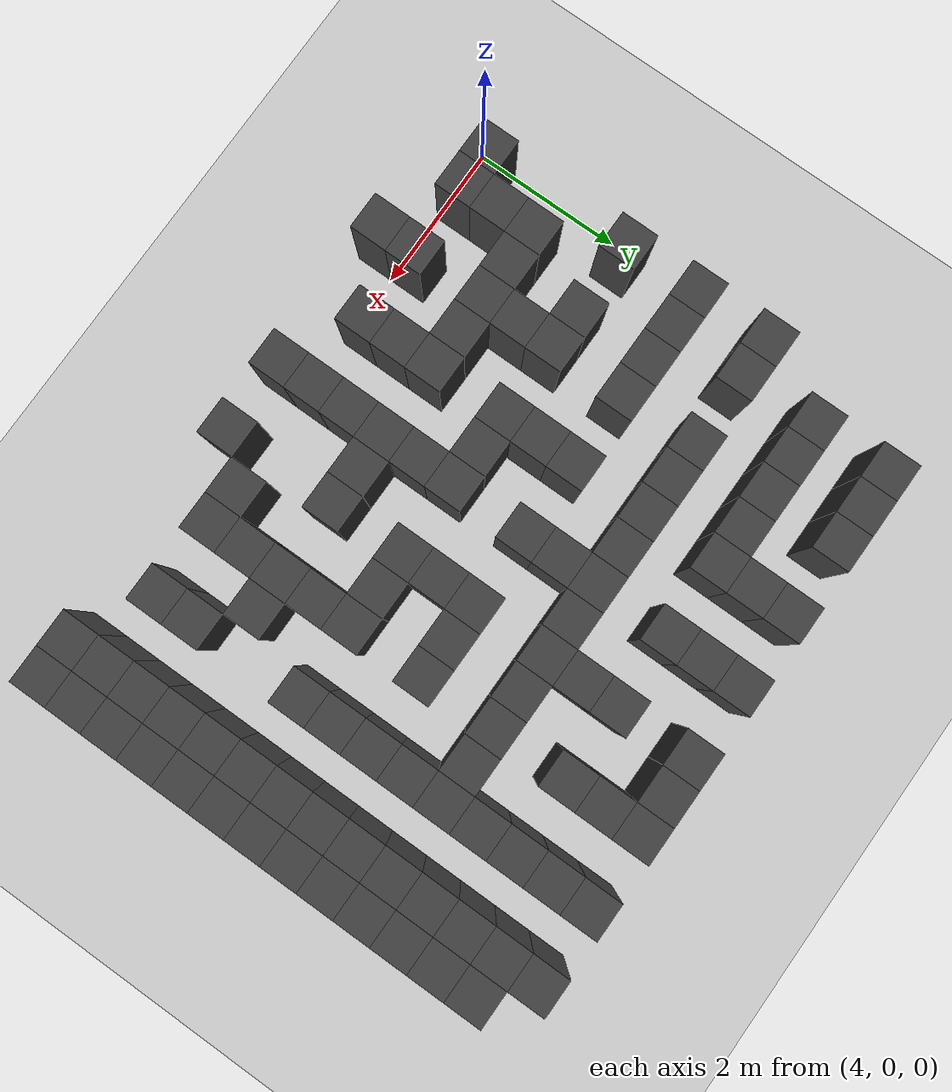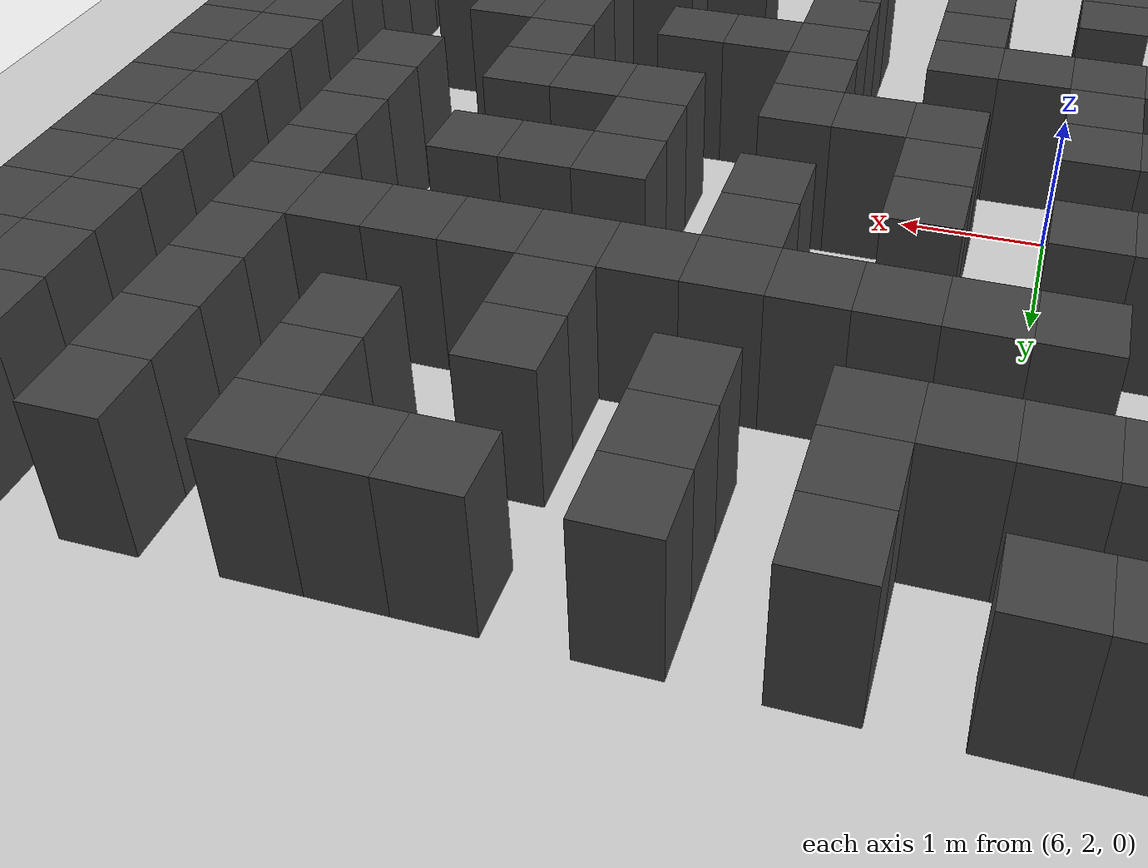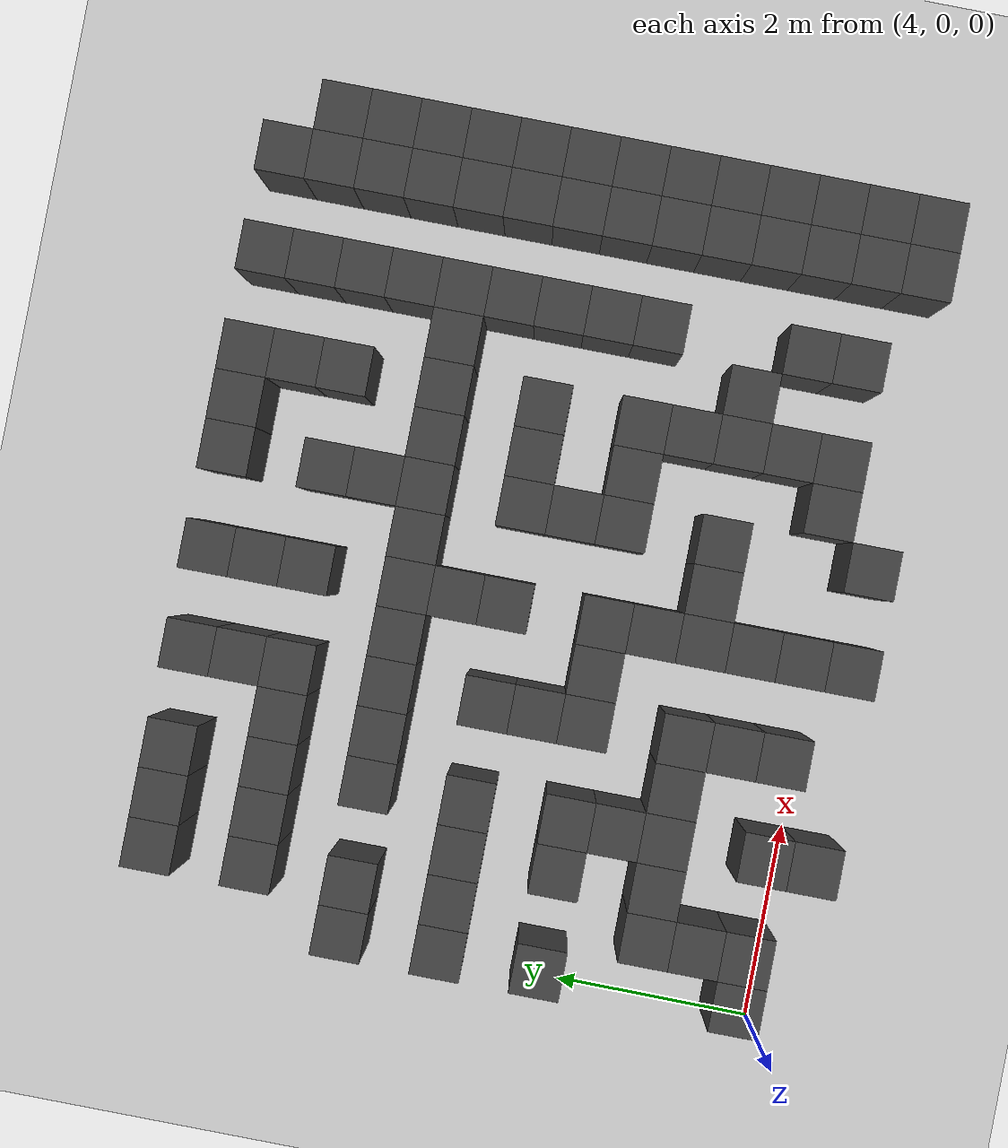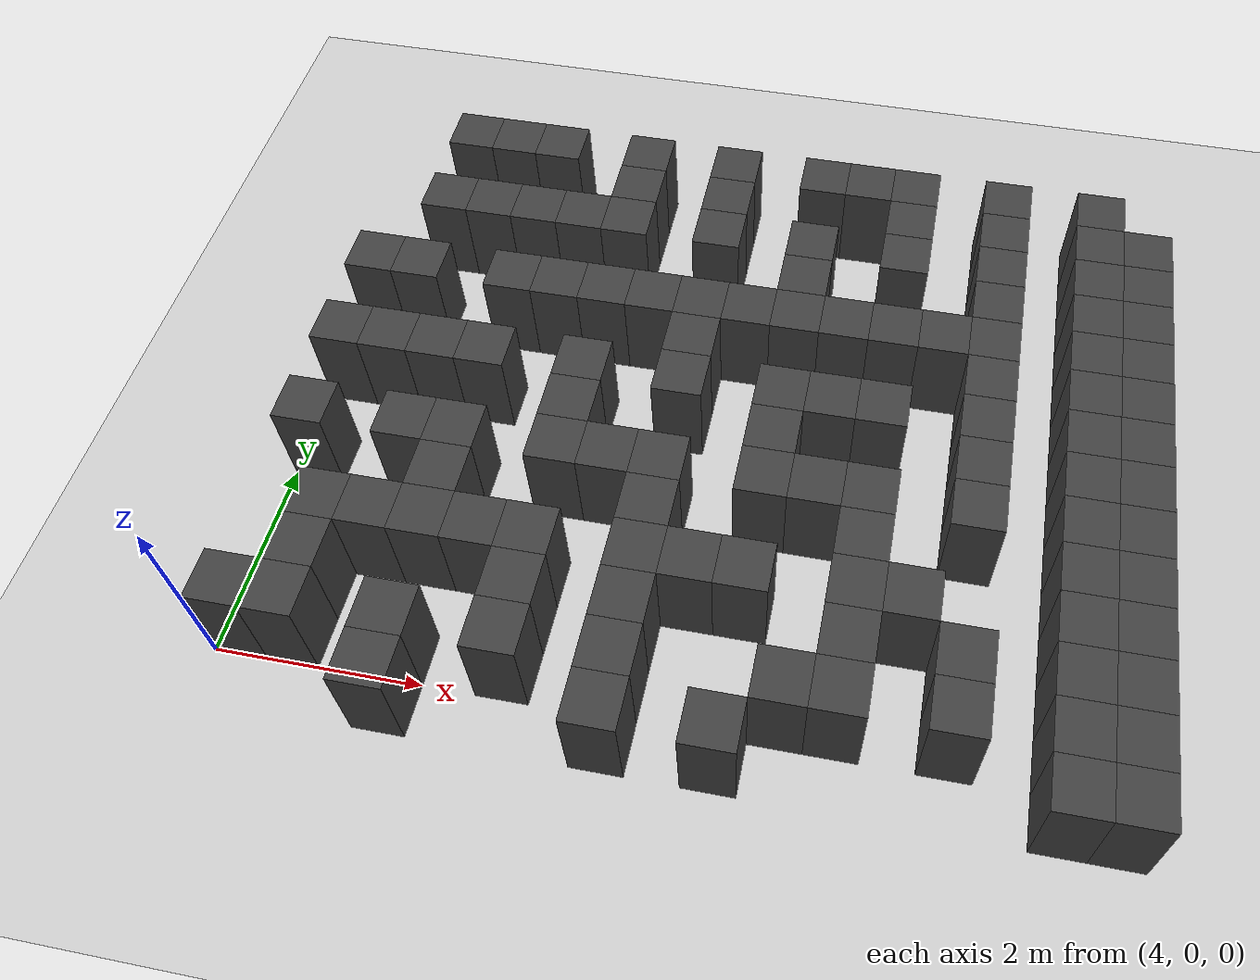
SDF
<sdf version="1.7">
 <world name="map_18313">
  <model name="ground_plane">
   <static>true</static>
   <link name="link">
    <collision name="collision">
     <geometry><plane><normal>0 0 1</normal><size>200 200</size></plane></geometry>
    </collision>
    <visual name="visual">
     <geometry><plane><normal>0 0 1</normal><size>200 200</size></plane></geometry>
     <material><ambient>0.8 0.8 0.8 1</ambient><diffuse>0.8 0.8 0.8 1</diffuse></material>
    </visual>
   </link>
  </model>
  <model name="maze_environment">
   <static>true</static>
   <link name="wall_335">
    <pose>4.750 6.250 0.500 0 0 0</pose>
    <collision name="col"><geometry><box><size>0.5 0.5 1.0</size></box></geometry></collision>
    <visual name="vis">
     <geometry><box><size>0.5 0.5 1.0</size></box></geometry>
     <material><ambient>0.15 0.15 0.15 1</ambient><diffuse>0.25 0.25 0.25 1</diffuse></material>
    </visual>
   </link>
   <link name="wall_336">
    <pose>5.250 6.250 0.500 0 0 0</pose>
    <collision name="col"><geometry><box><size>0.5 0.5 1.0</size></box></geometry></collision>
    <visual name="vis">
     <geometry><box><size>0.5 0.5 1.0</size></box></geometry>
     <material><ambient>0.15 0.15 0.15 1</ambient><diffuse>0.25 0.25 0.25 1</diffuse></material>
    </visual>
   </link>
   <link name="wall_337">
    <pose>5.750 6.250 0.500 0 0 0</pose>
    <collision name="col"><geometry><box><size>0.5 0.5 1.0</size></box></geometry></collision>
    <visual name="vis">
     <geometry><box><size>0.5 0.5 1.0</size></box></geometry>
     <material><ambient>0.15 0.15 0.15 1</ambient><diffuse>0.25 0.25 0.25 1</diffuse></material>
    </visual>
   </link>
   <link name="wall_338">
    <pose>6.750 6.250 0.500 0 0 0</pose>
    <collision name="col"><geometry><box><size>0.5 0.5 1.0</size></box></geometry></collision>
    <visual name="vis">
     <geometry><box><size>0.5 0.5 1.0</size></box></geometry>
     <material><ambient>0.15 0.15 0.15 1</ambient><diffuse>0.25 0.25 0.25 1</diffuse></material>
    </visual>
   </link>
   <link name="wall_339">
    <pose>7.750 6.250 0.500 0 0 0</pose>
    <collision name="col"><geometry><box><size>0.5 0.5 1.0</size></box></geometry></collision>
    <visual name="vis">
     <geometry><box><size>0.5 0.5 1.0</size></box></geometry>
     <material><ambient>0.15 0.15 0.15 1</ambient><diffuse>0.25 0.25 0.25 1</diffuse></material>
    </visual>
   </link>
   <link name="wall_340">
    <pose>8.750 6.250 0.500 0 0 0</pose>
    <collision name="col"><geometry><box><size>0.5 0.5 1.0</size></box></geometry></collision>
    <visual name="vis">
     <geometry><box><size>0.5 0.5 1.0</size></box></geometry>
     <material><ambient>0.15 0.15 0.15 1</ambient><diffuse>0.25 0.25 0.25 1</diffuse></material>
    </visual>
   </link>
   <link name="wall_341">
    <pose>9.250 6.250 0.500 0 0 0</pose>
    <collision name="col"><geometry><box><size>0.5 0.5 1.0</size></box></geometry></collision>
    <visual name="vis">
     <geometry><box><size>0.5 0.5 1.0</size></box></geometry>
     <material><ambient>0.15 0.15 0.15 1</ambient><diffuse>0.25 0.25 0.25 1</diffuse></material>
    </visual>
   </link>
   <link name="wall_342">
    <pose>9.750 6.250 0.500 0 0 0</pose>
    <collision name="col"><geometry><box><size>0.5 0.5 1.0</size></box></geometry></collision>
    <visual name="vis">
     <geometry><box><size>0.5 0.5 1.0</size></box></geometry>
     <material><ambient>0.15 0.15 0.15 1</ambient><diffuse>0.25 0.25 0.25 1</diffuse></material>
    </visual>
   </link>
   <link name="wall_343">
    <pose>10.750 6.250 0.500 0 0 0</pose>
    <collision name="col"><geometry><box><size>0.5 0.5 1.0</size></box></geometry></collision>
    <visual name="vis">
     <geometry><box><size>0.5 0.5 1.0</size></box></geometry>
     <material><ambient>0.15 0.15 0.15 1</ambient><diffuse>0.25 0.25 0.25 1</diffuse></material>
    </visual>
   </link>
   <link name="wall_344">
    <pose>11.750 6.250 0.500 0 0 0</pose>
    <collision name="col"><geometry><box><size>0.5 0.5 1.0</size></box></geometry></collision>
    <visual name="vis">
     <geometry><box><size>0.5 0.5 1.0</size></box></geometry>
     <material><ambient>0.15 0.15 0.15 1</ambient><diffuse>0.25 0.25 0.25 1</diffuse></material>
    </visual>
   </link>
   <link name="wall_353">
    <pose>6.750 5.750 0.500 0 0 0</pose>
    <collision name="col"><geometry><box><size>0.5 0.5 1.0</size></box></geometry></collision>
    <visual name="vis">
     <geometry><box><size>0.5 0.5 1.0</size></box></geometry>
     <material><ambient>0.15 0.15 0.15 1</ambient><diffuse>0.25 0.25 0.25 1</diffuse></material>
    </visual>
   </link>
   <link name="wall_354">
    <pose>7.750 5.750 0.500 0 0 0</pose>
    <collision name="col"><geometry><box><size>0.5 0.5 1.0</size></box></geometry></collision>
    <visual name="vis">
     <geometry><box><size>0.5 0.5 1.0</size></box></geometry>
     <material><ambient>0.15 0.15 0.15 1</ambient><diffuse>0.25 0.25 0.25 1</diffuse></material>
    </visual>
   </link>
   <link name="wall_355">
    <pose>9.750 5.750 0.500 0 0 0</pose>
    <collision name="col"><geometry><box><size>0.5 0.5 1.0</size></box></geometry></collision>
    <visual name="vis">
     <geometry><box><size>0.5 0.5 1.0</size></box></geometry>
     <material><ambient>0.15 0.15 0.15 1</ambient><diffuse>0.25 0.25 0.25 1</diffuse></material>
    </visual>
   </link>
   <link name="wall_356">
    <pose>10.750 5.750 0.500 0 0 0</pose>
    <collision name="col"><geometry><box><size>0.5 0.5 1.0</size></box></geometry></collision>
    <visual name="vis">
     <geometry><box><size>0.5 0.5 1.0</size></box></geometry>
     <material><ambient>0.15 0.15 0.15 1</ambient><diffuse>0.25 0.25 0.25 1</diffuse></material>
    </visual>
   </link>
   <link name="wall_357">
    <pose>11.750 5.750 0.500 0 0 0</pose>
    <collision name="col"><geometry><box><size>0.5 0.5 1.0</size></box></geometry></collision>
    <visual name="vis">
     <geometry><box><size>0.5 0.5 1.0</size></box></geometry>
     <material><ambient>0.15 0.15 0.15 1</ambient><diffuse>0.25 0.25 0.25 1</diffuse></material>
    </visual>
   </link>
   <link name="wall_358">
    <pose>12.250 5.750 0.500 0 0 0</pose>
    <collision name="col"><geometry><box><size>0.5 0.5 1.0</size></box></geometry></collision>
    <visual name="vis">
     <geometry><box><size>0.5 0.5 1.0</size></box></geometry>
     <material><ambient>0.15 0.15 0.15 1</ambient><diffuse>0.25 0.25 0.25 1</diffuse></material>
    </visual>
   </link>
   <link name="wall_385">
    <pose>4.750 5.250 0.500 0 0 0</pose>
    <collision name="col"><geometry><box><size>0.5 0.5 1.0</size></box></geometry></collision>
    <visual name="vis">
     <geometry><box><size>0.5 0.5 1.0</size></box></geometry>
     <material><ambient>0.15 0.15 0.15 1</ambient><diffuse>0.25 0.25 0.25 1</diffuse></material>
    </visual>
   </link>
   <link name="wall_386">
    <pose>5.250 5.250 0.500 0 0 0</pose>
    <collision name="col"><geometry><box><size>0.5 0.5 1.0</size></box></geometry></collision>
    <visual name="vis">
     <geometry><box><size>0.5 0.5 1.0</size></box></geometry>
     <material><ambient>0.15 0.15 0.15 1</ambient><diffuse>0.25 0.25 0.25 1</diffuse></material>
    </visual>
   </link>
   <link name="wall_387">
    <pose>5.750 5.250 0.500 0 0 0</pose>
    <collision name="col"><geometry><box><size>0.5 0.5 1.0</size></box></geometry></collision>
    <visual name="vis">
     <geometry><box><size>0.5 0.5 1.0</size></box></geometry>
     <material><ambient>0.15 0.15 0.15 1</ambient><diffuse>0.25 0.25 0.25 1</diffuse></material>
    </visual>
   </link>
   <link name="wall_388">
    <pose>6.250 5.250 0.500 0 0 0</pose>
    <collision name="col"><geometry><box><size>0.5 0.5 1.0</size></box></geometry></collision>
    <visual name="vis">
     <geometry><box><size>0.5 0.5 1.0</size></box></geometry>
     <material><ambient>0.15 0.15 0.15 1</ambient><diffuse>0.25 0.25 0.25 1</diffuse></material>
    </visual>
   </link>
   <link name="wall_389">
    <pose>6.750 5.250 0.500 0 0 0</pose>
    <collision name="col"><geometry><box><size>0.5 0.5 1.0</size></box></geometry></collision>
    <visual name="vis">
     <geometry><box><size>0.5 0.5 1.0</size></box></geometry>
     <material><ambient>0.15 0.15 0.15 1</ambient><diffuse>0.25 0.25 0.25 1</diffuse></material>
    </visual>
   </link>
   <link name="wall_390">
    <pose>7.750 5.250 0.500 0 0 0</pose>
    <collision name="col"><geometry><box><size>0.5 0.5 1.0</size></box></geometry></collision>
    <visual name="vis">
     <geometry><box><size>0.5 0.5 1.0</size></box></geometry>
     <material><ambient>0.15 0.15 0.15 1</ambient><diffuse>0.25 0.25 0.25 1</diffuse></material>
    </visual>
   </link>
   <link name="wall_391">
    <pose>8.750 5.250 0.500 0 0 0</pose>
    <collision name="col"><geometry><box><size>0.5 0.5 1.0</size></box></geometry></collision>
    <visual name="vis">
     <geometry><box><size>0.5 0.5 1.0</size></box></geometry>
     <material><ambient>0.15 0.15 0.15 1</ambient><diffuse>0.25 0.25 0.25 1</diffuse></material>
    </visual>
   </link>
   <link name="wall_392">
    <pose>9.750 5.250 0.500 0 0 0</pose>
    <collision name="col"><geometry><box><size>0.5 0.5 1.0</size></box></geometry></collision>
    <visual name="vis">
     <geometry><box><size>0.5 0.5 1.0</size></box></geometry>
     <material><ambient>0.15 0.15 0.15 1</ambient><diffuse>0.25 0.25 0.25 1</diffuse></material>
    </visual>
   </link>
   <link name="wall_393">
    <pose>10.750 5.250 0.500 0 0 0</pose>
    <collision name="col"><geometry><box><size>0.5 0.5 1.0</size></box></geometry></collision>
    <visual name="vis">
     <geometry><box><size>0.5 0.5 1.0</size></box></geometry>
     <material><ambient>0.15 0.15 0.15 1</ambient><diffuse>0.25 0.25 0.25 1</diffuse></material>
    </visual>
   </link>
   <link name="wall_394">
    <pose>11.750 5.250 0.500 0 0 0</pose>
    <collision name="col"><geometry><box><size>0.5 0.5 1.0</size></box></geometry></collision>
    <visual name="vis">
     <geometry><box><size>0.5 0.5 1.0</size></box></geometry>
     <material><ambient>0.15 0.15 0.15 1</ambient><diffuse>0.25 0.25 0.25 1</diffuse></material>
    </visual>
   </link>
   <link name="wall_395">
    <pose>12.250 5.250 0.500 0 0 0</pose>
    <collision name="col"><geometry><box><size>0.5 0.5 1.0</size></box></geometry></collision>
    <visual name="vis">
     <geometry><box><size>0.5 0.5 1.0</size></box></geometry>
     <material><ambient>0.15 0.15 0.15 1</ambient><diffuse>0.25 0.25 0.25 1</diffuse></material>
    </visual>
   </link>
   <link name="wall_405">
    <pose>8.750 4.750 0.500 0 0 0</pose>
    <collision name="col"><geometry><box><size>0.5 0.5 1.0</size></box></geometry></collision>
    <visual name="vis">
     <geometry><box><size>0.5 0.5 1.0</size></box></geometry>
     <material><ambient>0.15 0.15 0.15 1</ambient><diffuse>0.25 0.25 0.25 1</diffuse></material>
    </visual>
   </link>
   <link name="wall_406">
    <pose>10.750 4.750 0.500 0 0 0</pose>
    <collision name="col"><geometry><box><size>0.5 0.5 1.0</size></box></geometry></collision>
    <visual name="vis">
     <geometry><box><size>0.5 0.5 1.0</size></box></geometry>
     <material><ambient>0.15 0.15 0.15 1</ambient><diffuse>0.25 0.25 0.25 1</diffuse></material>
    </visual>
   </link>
   <link name="wall_407">
    <pose>11.750 4.750 0.500 0 0 0</pose>
    <collision name="col"><geometry><box><size>0.5 0.5 1.0</size></box></geometry></collision>
    <visual name="vis">
     <geometry><box><size>0.5 0.5 1.0</size></box></geometry>
     <material><ambient>0.15 0.15 0.15 1</ambient><diffuse>0.25 0.25 0.25 1</diffuse></material>
    </visual>
   </link>
   <link name="wall_408">
    <pose>12.250 4.750 0.500 0 0 0</pose>
    <collision name="col"><geometry><box><size>0.5 0.5 1.0</size></box></geometry></collision>
    <visual name="vis">
     <geometry><box><size>0.5 0.5 1.0</size></box></geometry>
     <material><ambient>0.15 0.15 0.15 1</ambient><diffuse>0.25 0.25 0.25 1</diffuse></material>
    </visual>
   </link>
   <link name="wall_431">
    <pose>4.250 4.250 0.500 0 0 0</pose>
    <collision name="col"><geometry><box><size>0.5 0.5 1.0</size></box></geometry></collision>
    <visual name="vis">
     <geometry><box><size>0.5 0.5 1.0</size></box></geometry>
     <material><ambient>0.15 0.15 0.15 1</ambient><diffuse>0.25 0.25 0.25 1</diffuse></material>
    </visual>
   </link>
   <link name="wall_432">
    <pose>4.750 4.250 0.500 0 0 0</pose>
    <collision name="col"><geometry><box><size>0.5 0.5 1.0</size></box></geometry></collision>
    <visual name="vis">
     <geometry><box><size>0.5 0.5 1.0</size></box></geometry>
     <material><ambient>0.15 0.15 0.15 1</ambient><diffuse>0.25 0.25 0.25 1</diffuse></material>
    </visual>
   </link>
   <link name="wall_433">
    <pose>5.750 4.250 0.500 0 0 0</pose>
    <collision name="col"><geometry><box><size>0.5 0.5 1.0</size></box></geometry></collision>
    <visual name="vis">
     <geometry><box><size>0.5 0.5 1.0</size></box></geometry>
     <material><ambient>0.15 0.15 0.15 1</ambient><diffuse>0.25 0.25 0.25 1</diffuse></material>
    </visual>
   </link>
   <link name="wall_434">
    <pose>6.250 4.250 0.500 0 0 0</pose>
    <collision name="col"><geometry><box><size>0.5 0.5 1.0</size></box></geometry></collision>
    <visual name="vis">
     <geometry><box><size>0.5 0.5 1.0</size></box></geometry>
     <material><ambient>0.15 0.15 0.15 1</ambient><diffuse>0.25 0.25 0.25 1</diffuse></material>
    </visual>
   </link>
   <link name="wall_435">
    <pose>6.750 4.250 0.500 0 0 0</pose>
    <collision name="col"><geometry><box><size>0.5 0.5 1.0</size></box></geometry></collision>
    <visual name="vis">
     <geometry><box><size>0.5 0.5 1.0</size></box></geometry>
     <material><ambient>0.15 0.15 0.15 1</ambient><diffuse>0.25 0.25 0.25 1</diffuse></material>
    </visual>
   </link>
   <link name="wall_436">
    <pose>7.250 4.250 0.500 0 0 0</pose>
    <collision name="col"><geometry><box><size>0.5 0.5 1.0</size></box></geometry></collision>
    <visual name="vis">
     <geometry><box><size>0.5 0.5 1.0</size></box></geometry>
     <material><ambient>0.15 0.15 0.15 1</ambient><diffuse>0.25 0.25 0.25 1</diffuse></material>
    </visual>
   </link>
   <link name="wall_437">
    <pose>7.750 4.250 0.500 0 0 0</pose>
    <collision name="col"><geometry><box><size>0.5 0.5 1.0</size></box></geometry></collision>
    <visual name="vis">
     <geometry><box><size>0.5 0.5 1.0</size></box></geometry>
     <material><ambient>0.15 0.15 0.15 1</ambient><diffuse>0.25 0.25 0.25 1</diffuse></material>
    </visual>
   </link>
   <link name="wall_438">
    <pose>8.250 4.250 0.500 0 0 0</pose>
    <collision name="col"><geometry><box><size>0.5 0.5 1.0</size></box></geometry></collision>
    <visual name="vis">
     <geometry><box><size>0.5 0.5 1.0</size></box></geometry>
     <material><ambient>0.15 0.15 0.15 1</ambient><diffuse>0.25 0.25 0.25 1</diffuse></material>
    </visual>
   </link>
   <link name="wall_439">
    <pose>8.750 4.250 0.500 0 0 0</pose>
    <collision name="col"><geometry><box><size>0.5 0.5 1.0</size></box></geometry></collision>
    <visual name="vis">
     <geometry><box><size>0.5 0.5 1.0</size></box></geometry>
     <material><ambient>0.15 0.15 0.15 1</ambient><diffuse>0.25 0.25 0.25 1</diffuse></material>
    </visual>
   </link>
   <link name="wall_440">
    <pose>9.250 4.250 0.500 0 0 0</pose>
    <collision name="col"><geometry><box><size>0.5 0.5 1.0</size></box></geometry></collision>
    <visual name="vis">
     <geometry><box><size>0.5 0.5 1.0</size></box></geometry>
     <material><ambient>0.15 0.15 0.15 1</ambient><diffuse>0.25 0.25 0.25 1</diffuse></material>
    </visual>
   </link>
   <link name="wall_441">
    <pose>9.750 4.250 0.500 0 0 0</pose>
    <collision name="col"><geometry><box><size>0.5 0.5 1.0</size></box></geometry></collision>
    <visual name="vis">
     <geometry><box><size>0.5 0.5 1.0</size></box></geometry>
     <material><ambient>0.15 0.15 0.15 1</ambient><diffuse>0.25 0.25 0.25 1</diffuse></material>
    </visual>
   </link>
   <link name="wall_442">
    <pose>10.250 4.250 0.500 0 0 0</pose>
    <collision name="col"><geometry><box><size>0.5 0.5 1.0</size></box></geometry></collision>
    <visual name="vis">
     <geometry><box><size>0.5 0.5 1.0</size></box></geometry>
     <material><ambient>0.15 0.15 0.15 1</ambient><diffuse>0.25 0.25 0.25 1</diffuse></material>
    </visual>
   </link>
   <link name="wall_443">
    <pose>10.750 4.250 0.500 0 0 0</pose>
    <collision name="col"><geometry><box><size>0.5 0.5 1.0</size></box></geometry></collision>
    <visual name="vis">
     <geometry><box><size>0.5 0.5 1.0</size></box></geometry>
     <material><ambient>0.15 0.15 0.15 1</ambient><diffuse>0.25 0.25 0.25 1</diffuse></material>
    </visual>
   </link>
   <link name="wall_444">
    <pose>11.750 4.250 0.500 0 0 0</pose>
    <collision name="col"><geometry><box><size>0.5 0.5 1.0</size></box></geometry></collision>
    <visual name="vis">
     <geometry><box><size>0.5 0.5 1.0</size></box></geometry>
     <material><ambient>0.15 0.15 0.15 1</ambient><diffuse>0.25 0.25 0.25 1</diffuse></material>
    </visual>
   </link>
   <link name="wall_445">
    <pose>12.250 4.250 0.500 0 0 0</pose>
    <collision name="col"><geometry><box><size>0.5 0.5 1.0</size></box></geometry></collision>
    <visual name="vis">
     <geometry><box><size>0.5 0.5 1.0</size></box></geometry>
     <material><ambient>0.15 0.15 0.15 1</ambient><diffuse>0.25 0.25 0.25 1</diffuse></material>
    </visual>
   </link>
   <link name="wall_456">
    <pose>7.750 3.750 0.500 0 0 0</pose>
    <collision name="col"><geometry><box><size>0.5 0.5 1.0</size></box></geometry></collision>
    <visual name="vis">
     <geometry><box><size>0.5 0.5 1.0</size></box></geometry>
     <material><ambient>0.15 0.15 0.15 1</ambient><diffuse>0.25 0.25 0.25 1</diffuse></material>
    </visual>
   </link>
   <link name="wall_457">
    <pose>10.750 3.750 0.500 0 0 0</pose>
    <collision name="col"><geometry><box><size>0.5 0.5 1.0</size></box></geometry></collision>
    <visual name="vis">
     <geometry><box><size>0.5 0.5 1.0</size></box></geometry>
     <material><ambient>0.15 0.15 0.15 1</ambient><diffuse>0.25 0.25 0.25 1</diffuse></material>
    </visual>
   </link>
   <link name="wall_458">
    <pose>11.750 3.750 0.500 0 0 0</pose>
    <collision name="col"><geometry><box><size>0.5 0.5 1.0</size></box></geometry></collision>
    <visual name="vis">
     <geometry><box><size>0.5 0.5 1.0</size></box></geometry>
     <material><ambient>0.15 0.15 0.15 1</ambient><diffuse>0.25 0.25 0.25 1</diffuse></material>
    </visual>
   </link>
   <link name="wall_459">
    <pose>12.250 3.750 0.500 0 0 0</pose>
    <collision name="col"><geometry><box><size>0.5 0.5 1.0</size></box></geometry></collision>
    <visual name="vis">
     <geometry><box><size>0.5 0.5 1.0</size></box></geometry>
     <material><ambient>0.15 0.15 0.15 1</ambient><diffuse>0.25 0.25 0.25 1</diffuse></material>
    </visual>
   </link>
   <link name="wall_484">
    <pose>4.250 3.250 0.500 0 0 0</pose>
    <collision name="col"><geometry><box><size>0.5 0.5 1.0</size></box></geometry></collision>
    <visual name="vis">
     <geometry><box><size>0.5 0.5 1.0</size></box></geometry>
     <material><ambient>0.15 0.15 0.15 1</ambient><diffuse>0.25 0.25 0.25 1</diffuse></material>
    </visual>
   </link>
   <link name="wall_485">
    <pose>4.750 3.250 0.500 0 0 0</pose>
    <collision name="col"><geometry><box><size>0.5 0.5 1.0</size></box></geometry></collision>
    <visual name="vis">
     <geometry><box><size>0.5 0.5 1.0</size></box></geometry>
     <material><ambient>0.15 0.15 0.15 1</ambient><diffuse>0.25 0.25 0.25 1</diffuse></material>
    </visual>
   </link>
   <link name="wall_486">
    <pose>5.250 3.250 0.500 0 0 0</pose>
    <collision name="col"><geometry><box><size>0.5 0.5 1.0</size></box></geometry></collision>
    <visual name="vis">
     <geometry><box><size>0.5 0.5 1.0</size></box></geometry>
     <material><ambient>0.15 0.15 0.15 1</ambient><diffuse>0.25 0.25 0.25 1</diffuse></material>
    </visual>
   </link>
   <link name="wall_487">
    <pose>5.750 3.250 0.500 0 0 0</pose>
    <collision name="col"><geometry><box><size>0.5 0.5 1.0</size></box></geometry></collision>
    <visual name="vis">
     <geometry><box><size>0.5 0.5 1.0</size></box></geometry>
     <material><ambient>0.15 0.15 0.15 1</ambient><diffuse>0.25 0.25 0.25 1</diffuse></material>
    </visual>
   </link>
   <link name="wall_488">
    <pose>6.750 3.250 0.500 0 0 0</pose>
    <collision name="col"><geometry><box><size>0.5 0.5 1.0</size></box></geometry></collision>
    <visual name="vis">
     <geometry><box><size>0.5 0.5 1.0</size></box></geometry>
     <material><ambient>0.15 0.15 0.15 1</ambient><diffuse>0.25 0.25 0.25 1</diffuse></material>
    </visual>
   </link>
   <link name="wall_489">
    <pose>7.750 3.250 0.500 0 0 0</pose>
    <collision name="col"><geometry><box><size>0.5 0.5 1.0</size></box></geometry></collision>
    <visual name="vis">
     <geometry><box><size>0.5 0.5 1.0</size></box></geometry>
     <material><ambient>0.15 0.15 0.15 1</ambient><diffuse>0.25 0.25 0.25 1</diffuse></material>
    </visual>
   </link>
   <link name="wall_490">
    <pose>8.750 3.250 0.500 0 0 0</pose>
    <collision name="col"><geometry><box><size>0.5 0.5 1.0</size></box></geometry></collision>
    <visual name="vis">
     <geometry><box><size>0.5 0.5 1.0</size></box></geometry>
     <material><ambient>0.15 0.15 0.15 1</ambient><diffuse>0.25 0.25 0.25 1</diffuse></material>
    </visual>
   </link>
   <link name="wall_491">
    <pose>9.250 3.250 0.500 0 0 0</pose>
    <collision name="col"><geometry><box><size>0.5 0.5 1.0</size></box></geometry></collision>
    <visual name="vis">
     <geometry><box><size>0.5 0.5 1.0</size></box></geometry>
     <material><ambient>0.15 0.15 0.15 1</ambient><diffuse>0.25 0.25 0.25 1</diffuse></material>
    </visual>
   </link>
   <link name="wall_492">
    <pose>9.750 3.250 0.500 0 0 0</pose>
    <collision name="col"><geometry><box><size>0.5 0.5 1.0</size></box></geometry></collision>
    <visual name="vis">
     <geometry><box><size>0.5 0.5 1.0</size></box></geometry>
     <material><ambient>0.15 0.15 0.15 1</ambient><diffuse>0.25 0.25 0.25 1</diffuse></material>
    </visual>
   </link>
   <link name="wall_493">
    <pose>10.750 3.250 0.500 0 0 0</pose>
    <collision name="col"><geometry><box><size>0.5 0.5 1.0</size></box></geometry></collision>
    <visual name="vis">
     <geometry><box><size>0.5 0.5 1.0</size></box></geometry>
     <material><ambient>0.15 0.15 0.15 1</ambient><diffuse>0.25 0.25 0.25 1</diffuse></material>
    </visual>
   </link>
   <link name="wall_494">
    <pose>11.750 3.250 0.500 0 0 0</pose>
    <collision name="col"><geometry><box><size>0.5 0.5 1.0</size></box></geometry></collision>
    <visual name="vis">
     <geometry><box><size>0.5 0.5 1.0</size></box></geometry>
     <material><ambient>0.15 0.15 0.15 1</ambient><diffuse>0.25 0.25 0.25 1</diffuse></material>
    </visual>
   </link>
   <link name="wall_495">
    <pose>12.250 3.250 0.500 0 0 0</pose>
    <collision name="col"><geometry><box><size>0.5 0.5 1.0</size></box></geometry></collision>
    <visual name="vis">
     <geometry><box><size>0.5 0.5 1.0</size></box></geometry>
     <material><ambient>0.15 0.15 0.15 1</ambient><diffuse>0.25 0.25 0.25 1</diffuse></material>
    </visual>
   </link>
   <link name="wall_507">
    <pose>6.750 2.750 0.500 0 0 0</pose>
    <collision name="col"><geometry><box><size>0.5 0.5 1.0</size></box></geometry></collision>
    <visual name="vis">
     <geometry><box><size>0.5 0.5 1.0</size></box></geometry>
     <material><ambient>0.15 0.15 0.15 1</ambient><diffuse>0.25 0.25 0.25 1</diffuse></material>
    </visual>
   </link>
   <link name="wall_508">
    <pose>8.750 2.750 0.500 0 0 0</pose>
    <collision name="col"><geometry><box><size>0.5 0.5 1.0</size></box></geometry></collision>
    <visual name="vis">
     <geometry><box><size>0.5 0.5 1.0</size></box></geometry>
     <material><ambient>0.15 0.15 0.15 1</ambient><diffuse>0.25 0.25 0.25 1</diffuse></material>
    </visual>
   </link>
   <link name="wall_509">
    <pose>10.750 2.750 0.500 0 0 0</pose>
    <collision name="col"><geometry><box><size>0.5 0.5 1.0</size></box></geometry></collision>
    <visual name="vis">
     <geometry><box><size>0.5 0.5 1.0</size></box></geometry>
     <material><ambient>0.15 0.15 0.15 1</ambient><diffuse>0.25 0.25 0.25 1</diffuse></material>
    </visual>
   </link>
   <link name="wall_510">
    <pose>11.750 2.750 0.500 0 0 0</pose>
    <collision name="col"><geometry><box><size>0.5 0.5 1.0</size></box></geometry></collision>
    <visual name="vis">
     <geometry><box><size>0.5 0.5 1.0</size></box></geometry>
     <material><ambient>0.15 0.15 0.15 1</ambient><diffuse>0.25 0.25 0.25 1</diffuse></material>
    </visual>
   </link>
   <link name="wall_511">
    <pose>12.250 2.750 0.500 0 0 0</pose>
    <collision name="col"><geometry><box><size>0.5 0.5 1.0</size></box></geometry></collision>
    <visual name="vis">
     <geometry><box><size>0.5 0.5 1.0</size></box></geometry>
     <material><ambient>0.15 0.15 0.15 1</ambient><diffuse>0.25 0.25 0.25 1</diffuse></material>
    </visual>
   </link>
   <link name="wall_533">
    <pose>4.250 2.250 0.500 0 0 0</pose>
    <collision name="col"><geometry><box><size>0.5 0.5 1.0</size></box></geometry></collision>
    <visual name="vis">
     <geometry><box><size>0.5 0.5 1.0</size></box></geometry>
     <material><ambient>0.15 0.15 0.15 1</ambient><diffuse>0.25 0.25 0.25 1</diffuse></material>
    </visual>
   </link>
   <link name="wall_534">
    <pose>5.250 2.250 0.500 0 0 0</pose>
    <collision name="col"><geometry><box><size>0.5 0.5 1.0</size></box></geometry></collision>
    <visual name="vis">
     <geometry><box><size>0.5 0.5 1.0</size></box></geometry>
     <material><ambient>0.15 0.15 0.15 1</ambient><diffuse>0.25 0.25 0.25 1</diffuse></material>
    </visual>
   </link>
   <link name="wall_535">
    <pose>5.750 2.250 0.500 0 0 0</pose>
    <collision name="col"><geometry><box><size>0.5 0.5 1.0</size></box></geometry></collision>
    <visual name="vis">
     <geometry><box><size>0.5 0.5 1.0</size></box></geometry>
     <material><ambient>0.15 0.15 0.15 1</ambient><diffuse>0.25 0.25 0.25 1</diffuse></material>
    </visual>
   </link>
   <link name="wall_536">
    <pose>6.750 2.250 0.500 0 0 0</pose>
    <collision name="col"><geometry><box><size>0.5 0.5 1.0</size></box></geometry></collision>
    <visual name="vis">
     <geometry><box><size>0.5 0.5 1.0</size></box></geometry>
     <material><ambient>0.15 0.15 0.15 1</ambient><diffuse>0.25 0.25 0.25 1</diffuse></material>
    </visual>
   </link>
   <link name="wall_537">
    <pose>7.250 2.250 0.500 0 0 0</pose>
    <collision name="col"><geometry><box><size>0.5 0.5 1.0</size></box></geometry></collision>
    <visual name="vis">
     <geometry><box><size>0.5 0.5 1.0</size></box></geometry>
     <material><ambient>0.15 0.15 0.15 1</ambient><diffuse>0.25 0.25 0.25 1</diffuse></material>
    </visual>
   </link>
   <link name="wall_538">
    <pose>7.750 2.250 0.500 0 0 0</pose>
    <collision name="col"><geometry><box><size>0.5 0.5 1.0</size></box></geometry></collision>
    <visual name="vis">
     <geometry><box><size>0.5 0.5 1.0</size></box></geometry>
     <material><ambient>0.15 0.15 0.15 1</ambient><diffuse>0.25 0.25 0.25 1</diffuse></material>
    </visual>
   </link>
   <link name="wall_539">
    <pose>8.750 2.250 0.500 0 0 0</pose>
    <collision name="col"><geometry><box><size>0.5 0.5 1.0</size></box></geometry></collision>
    <visual name="vis">
     <geometry><box><size>0.5 0.5 1.0</size></box></geometry>
     <material><ambient>0.15 0.15 0.15 1</ambient><diffuse>0.25 0.25 0.25 1</diffuse></material>
    </visual>
   </link>
   <link name="wall_540">
    <pose>9.250 2.250 0.500 0 0 0</pose>
    <collision name="col"><geometry><box><size>0.5 0.5 1.0</size></box></geometry></collision>
    <visual name="vis">
     <geometry><box><size>0.5 0.5 1.0</size></box></geometry>
     <material><ambient>0.15 0.15 0.15 1</ambient><diffuse>0.25 0.25 0.25 1</diffuse></material>
    </visual>
   </link>
   <link name="wall_541">
    <pose>9.750 2.250 0.500 0 0 0</pose>
    <collision name="col"><geometry><box><size>0.5 0.5 1.0</size></box></geometry></collision>
    <visual name="vis">
     <geometry><box><size>0.5 0.5 1.0</size></box></geometry>
     <material><ambient>0.15 0.15 0.15 1</ambient><diffuse>0.25 0.25 0.25 1</diffuse></material>
    </visual>
   </link>
   <link name="wall_542">
    <pose>10.750 2.250 0.500 0 0 0</pose>
    <collision name="col"><geometry><box><size>0.5 0.5 1.0</size></box></geometry></collision>
    <visual name="vis">
     <geometry><box><size>0.5 0.5 1.0</size></box></geometry>
     <material><ambient>0.15 0.15 0.15 1</ambient><diffuse>0.25 0.25 0.25 1</diffuse></material>
    </visual>
   </link>
   <link name="wall_543">
    <pose>11.750 2.250 0.500 0 0 0</pose>
    <collision name="col"><geometry><box><size>0.5 0.5 1.0</size></box></geometry></collision>
    <visual name="vis">
     <geometry><box><size>0.5 0.5 1.0</size></box></geometry>
     <material><ambient>0.15 0.15 0.15 1</ambient><diffuse>0.25 0.25 0.25 1</diffuse></material>
    </visual>
   </link>
   <link name="wall_544">
    <pose>12.250 2.250 0.500 0 0 0</pose>
    <collision name="col"><geometry><box><size>0.5 0.5 1.0</size></box></geometry></collision>
    <visual name="vis">
     <geometry><box><size>0.5 0.5 1.0</size></box></geometry>
     <material><ambient>0.15 0.15 0.15 1</ambient><diffuse>0.25 0.25 0.25 1</diffuse></material>
    </visual>
   </link>
   <link name="wall_554">
    <pose>5.750 1.750 0.500 0 0 0</pose>
    <collision name="col"><geometry><box><size>0.5 0.5 1.0</size></box></geometry></collision>
    <visual name="vis">
     <geometry><box><size>0.5 0.5 1.0</size></box></geometry>
     <material><ambient>0.15 0.15 0.15 1</ambient><diffuse>0.25 0.25 0.25 1</diffuse></material>
    </visual>
   </link>
   <link name="wall_555">
    <pose>7.750 1.750 0.500 0 0 0</pose>
    <collision name="col"><geometry><box><size>0.5 0.5 1.0</size></box></geometry></collision>
    <visual name="vis">
     <geometry><box><size>0.5 0.5 1.0</size></box></geometry>
     <material><ambient>0.15 0.15 0.15 1</ambient><diffuse>0.25 0.25 0.25 1</diffuse></material>
    </visual>
   </link>
   <link name="wall_556">
    <pose>9.750 1.750 0.500 0 0 0</pose>
    <collision name="col"><geometry><box><size>0.5 0.5 1.0</size></box></geometry></collision>
    <visual name="vis">
     <geometry><box><size>0.5 0.5 1.0</size></box></geometry>
     <material><ambient>0.15 0.15 0.15 1</ambient><diffuse>0.25 0.25 0.25 1</diffuse></material>
    </visual>
   </link>
   <link name="wall_557">
    <pose>11.750 1.750 0.500 0 0 0</pose>
    <collision name="col"><geometry><box><size>0.5 0.5 1.0</size></box></geometry></collision>
    <visual name="vis">
     <geometry><box><size>0.5 0.5 1.0</size></box></geometry>
     <material><ambient>0.15 0.15 0.15 1</ambient><diffuse>0.25 0.25 0.25 1</diffuse></material>
    </visual>
   </link>
   <link name="wall_558">
    <pose>12.250 1.750 0.500 0 0 0</pose>
    <collision name="col"><geometry><box><size>0.5 0.5 1.0</size></box></geometry></collision>
    <visual name="vis">
     <geometry><box><size>0.5 0.5 1.0</size></box></geometry>
     <material><ambient>0.15 0.15 0.15 1</ambient><diffuse>0.25 0.25 0.25 1</diffuse></material>
    </visual>
   </link>
   <link name="wall_582">
    <pose>4.750 1.250 0.500 0 0 0</pose>
    <collision name="col"><geometry><box><size>0.5 0.5 1.0</size></box></geometry></collision>
    <visual name="vis">
     <geometry><box><size>0.5 0.5 1.0</size></box></geometry>
     <material><ambient>0.15 0.15 0.15 1</ambient><diffuse>0.25 0.25 0.25 1</diffuse></material>
    </visual>
   </link>
   <link name="wall_583">
    <pose>5.250 1.250 0.500 0 0 0</pose>
    <collision name="col"><geometry><box><size>0.5 0.5 1.0</size></box></geometry></collision>
    <visual name="vis">
     <geometry><box><size>0.5 0.5 1.0</size></box></geometry>
     <material><ambient>0.15 0.15 0.15 1</ambient><diffuse>0.25 0.25 0.25 1</diffuse></material>
    </visual>
   </link>
   <link name="wall_584">
    <pose>5.750 1.250 0.500 0 0 0</pose>
    <collision name="col"><geometry><box><size>0.5 0.5 1.0</size></box></geometry></collision>
    <visual name="vis">
     <geometry><box><size>0.5 0.5 1.0</size></box></geometry>
     <material><ambient>0.15 0.15 0.15 1</ambient><diffuse>0.25 0.25 0.25 1</diffuse></material>
    </visual>
   </link>
   <link name="wall_585">
    <pose>6.250 1.250 0.500 0 0 0</pose>
    <collision name="col"><geometry><box><size>0.5 0.5 1.0</size></box></geometry></collision>
    <visual name="vis">
     <geometry><box><size>0.5 0.5 1.0</size></box></geometry>
     <material><ambient>0.15 0.15 0.15 1</ambient><diffuse>0.25 0.25 0.25 1</diffuse></material>
    </visual>
   </link>
   <link name="wall_586">
    <pose>6.750 1.250 0.500 0 0 0</pose>
    <collision name="col"><geometry><box><size>0.5 0.5 1.0</size></box></geometry></collision>
    <visual name="vis">
     <geometry><box><size>0.5 0.5 1.0</size></box></geometry>
     <material><ambient>0.15 0.15 0.15 1</ambient><diffuse>0.25 0.25 0.25 1</diffuse></material>
    </visual>
   </link>
   <link name="wall_587">
    <pose>7.750 1.250 0.500 0 0 0</pose>
    <collision name="col"><geometry><box><size>0.5 0.5 1.0</size></box></geometry></collision>
    <visual name="vis">
     <geometry><box><size>0.5 0.5 1.0</size></box></geometry>
     <material><ambient>0.15 0.15 0.15 1</ambient><diffuse>0.25 0.25 0.25 1</diffuse></material>
    </visual>
   </link>
   <link name="wall_588">
    <pose>8.250 1.250 0.500 0 0 0</pose>
    <collision name="col"><geometry><box><size>0.5 0.5 1.0</size></box></geometry></collision>
    <visual name="vis">
     <geometry><box><size>0.5 0.5 1.0</size></box></geometry>
     <material><ambient>0.15 0.15 0.15 1</ambient><diffuse>0.25 0.25 0.25 1</diffuse></material>
    </visual>
   </link>
   <link name="wall_589">
    <pose>8.750 1.250 0.500 0 0 0</pose>
    <collision name="col"><geometry><box><size>0.5 0.5 1.0</size></box></geometry></collision>
    <visual name="vis">
     <geometry><box><size>0.5 0.5 1.0</size></box></geometry>
     <material><ambient>0.15 0.15 0.15 1</ambient><diffuse>0.25 0.25 0.25 1</diffuse></material>
    </visual>
   </link>
   <link name="wall_590">
    <pose>9.750 1.250 0.500 0 0 0</pose>
    <collision name="col"><geometry><box><size>0.5 0.5 1.0</size></box></geometry></collision>
    <visual name="vis">
     <geometry><box><size>0.5 0.5 1.0</size></box></geometry>
     <material><ambient>0.15 0.15 0.15 1</ambient><diffuse>0.25 0.25 0.25 1</diffuse></material>
    </visual>
   </link>
   <link name="wall_591">
    <pose>10.250 1.250 0.500 0 0 0</pose>
    <collision name="col"><geometry><box><size>0.5 0.5 1.0</size></box></geometry></collision>
    <visual name="vis">
     <geometry><box><size>0.5 0.5 1.0</size></box></geometry>
     <material><ambient>0.15 0.15 0.15 1</ambient><diffuse>0.25 0.25 0.25 1</diffuse></material>
    </visual>
   </link>
   <link name="wall_592">
    <pose>11.750 1.250 0.500 0 0 0</pose>
    <collision name="col"><geometry><box><size>0.5 0.5 1.0</size></box></geometry></collision>
    <visual name="vis">
     <geometry><box><size>0.5 0.5 1.0</size></box></geometry>
     <material><ambient>0.15 0.15 0.15 1</ambient><diffuse>0.25 0.25 0.25 1</diffuse></material>
    </visual>
   </link>
   <link name="wall_593">
    <pose>12.250 1.250 0.500 0 0 0</pose>
    <collision name="col"><geometry><box><size>0.5 0.5 1.0</size></box></geometry></collision>
    <visual name="vis">
     <geometry><box><size>0.5 0.5 1.0</size></box></geometry>
     <material><ambient>0.15 0.15 0.15 1</ambient><diffuse>0.25 0.25 0.25 1</diffuse></material>
    </visual>
   </link>
   <link name="wall_601">
    <pose>4.750 0.750 0.500 0 0 0</pose>
    <collision name="col"><geometry><box><size>0.5 0.5 1.0</size></box></geometry></collision>
    <visual name="vis">
     <geometry><box><size>0.5 0.5 1.0</size></box></geometry>
     <material><ambient>0.15 0.15 0.15 1</ambient><diffuse>0.25 0.25 0.25 1</diffuse></material>
    </visual>
   </link>
   <link name="wall_602">
    <pose>6.750 0.750 0.500 0 0 0</pose>
    <collision name="col"><geometry><box><size>0.5 0.5 1.0</size></box></geometry></collision>
    <visual name="vis">
     <geometry><box><size>0.5 0.5 1.0</size></box></geometry>
     <material><ambient>0.15 0.15 0.15 1</ambient><diffuse>0.25 0.25 0.25 1</diffuse></material>
    </visual>
   </link>
   <link name="wall_603">
    <pose>7.750 0.750 0.500 0 0 0</pose>
    <collision name="col"><geometry><box><size>0.5 0.5 1.0</size></box></geometry></collision>
    <visual name="vis">
     <geometry><box><size>0.5 0.5 1.0</size></box></geometry>
     <material><ambient>0.15 0.15 0.15 1</ambient><diffuse>0.25 0.25 0.25 1</diffuse></material>
    </visual>
   </link>
   <link name="wall_604">
    <pose>9.750 0.750 0.500 0 0 0</pose>
    <collision name="col"><geometry><box><size>0.5 0.5 1.0</size></box></geometry></collision>
    <visual name="vis">
     <geometry><box><size>0.5 0.5 1.0</size></box></geometry>
     <material><ambient>0.15 0.15 0.15 1</ambient><diffuse>0.25 0.25 0.25 1</diffuse></material>
    </visual>
   </link>
   <link name="wall_605">
    <pose>10.750 0.750 0.500 0 0 0</pose>
    <collision name="col"><geometry><box><size>0.5 0.5 1.0</size></box></geometry></collision>
    <visual name="vis">
     <geometry><box><size>0.5 0.5 1.0</size></box></geometry>
     <material><ambient>0.15 0.15 0.15 1</ambient><diffuse>0.25 0.25 0.25 1</diffuse></material>
    </visual>
   </link>
   <link name="wall_606">
    <pose>11.750 0.750 0.500 0 0 0</pose>
    <collision name="col"><geometry><box><size>0.5 0.5 1.0</size></box></geometry></collision>
    <visual name="vis">
     <geometry><box><size>0.5 0.5 1.0</size></box></geometry>
     <material><ambient>0.15 0.15 0.15 1</ambient><diffuse>0.25 0.25 0.25 1</diffuse></material>
    </visual>
   </link>
   <link name="wall_607">
    <pose>12.250 0.750 0.500 0 0 0</pose>
    <collision name="col"><geometry><box><size>0.5 0.5 1.0</size></box></geometry></collision>
    <visual name="vis">
     <geometry><box><size>0.5 0.5 1.0</size></box></geometry>
     <material><ambient>0.15 0.15 0.15 1</ambient><diffuse>0.25 0.25 0.25 1</diffuse></material>
    </visual>
   </link>
   <link name="wall_634">
    <pose>4.250 0.250 0.500 0 0 0</pose>
    <collision name="col"><geometry><box><size>0.5 0.5 1.0</size></box></geometry></collision>
    <visual name="vis">
     <geometry><box><size>0.5 0.5 1.0</size></box></geometry>
     <material><ambient>0.15 0.15 0.15 1</ambient><diffuse>0.25 0.25 0.25 1</diffuse></material>
    </visual>
   </link>
   <link name="wall_635">
    <pose>4.750 0.250 0.500 0 0 0</pose>
    <collision name="col"><geometry><box><size>0.5 0.5 1.0</size></box></geometry></collision>
    <visual name="vis">
     <geometry><box><size>0.5 0.5 1.0</size></box></geometry>
     <material><ambient>0.15 0.15 0.15 1</ambient><diffuse>0.25 0.25 0.25 1</diffuse></material>
    </visual>
   </link>
   <link name="wall_636">
    <pose>5.750 0.250 0.500 0 0 0</pose>
    <collision name="col"><geometry><box><size>0.5 0.5 1.0</size></box></geometry></collision>
    <visual name="vis">
     <geometry><box><size>0.5 0.5 1.0</size></box></geometry>
     <material><ambient>0.15 0.15 0.15 1</ambient><diffuse>0.25 0.25 0.25 1</diffuse></material>
    </visual>
   </link>
   <link name="wall_637">
    <pose>6.750 0.250 0.500 0 0 0</pose>
    <collision name="col"><geometry><box><size>0.5 0.5 1.0</size></box></geometry></collision>
    <visual name="vis">
     <geometry><box><size>0.5 0.5 1.0</size></box></geometry>
     <material><ambient>0.15 0.15 0.15 1</ambient><diffuse>0.25 0.25 0.25 1</diffuse></material>
    </visual>
   </link>
   <link name="wall_638">
    <pose>7.750 0.250 0.500 0 0 0</pose>
    <collision name="col"><geometry><box><size>0.5 0.5 1.0</size></box></geometry></collision>
    <visual name="vis">
     <geometry><box><size>0.5 0.5 1.0</size></box></geometry>
     <material><ambient>0.15 0.15 0.15 1</ambient><diffuse>0.25 0.25 0.25 1</diffuse></material>
    </visual>
   </link>
   <link name="wall_639">
    <pose>9.250 0.250 0.500 0 0 0</pose>
    <collision name="col"><geometry><box><size>0.5 0.5 1.0</size></box></geometry></collision>
    <visual name="vis">
     <geometry><box><size>0.5 0.5 1.0</size></box></geometry>
     <material><ambient>0.15 0.15 0.15 1</ambient><diffuse>0.25 0.25 0.25 1</diffuse></material>
    </visual>
   </link>
   <link name="wall_640">
    <pose>9.750 0.250 0.500 0 0 0</pose>
    <collision name="col"><geometry><box><size>0.5 0.5 1.0</size></box></geometry></collision>
    <visual name="vis">
     <geometry><box><size>0.5 0.5 1.0</size></box></geometry>
     <material><ambient>0.15 0.15 0.15 1</ambient><diffuse>0.25 0.25 0.25 1</diffuse></material>
    </visual>
   </link>
   <link name="wall_641">
    <pose>10.750 0.250 0.500 0 0 0</pose>
    <collision name="col"><geometry><box><size>0.5 0.5 1.0</size></box></geometry></collision>
    <visual name="vis">
     <geometry><box><size>0.5 0.5 1.0</size></box></geometry>
     <material><ambient>0.15 0.15 0.15 1</ambient><diffuse>0.25 0.25 0.25 1</diffuse></material>
    </visual>
   </link>
   <link name="wall_642">
    <pose>11.750 0.250 0.500 0 0 0</pose>
    <collision name="col"><geometry><box><size>0.5 0.5 1.0</size></box></geometry></collision>
    <visual name="vis">
     <geometry><box><size>0.5 0.5 1.0</size></box></geometry>
     <material><ambient>0.15 0.15 0.15 1</ambient><diffuse>0.25 0.25 0.25 1</diffuse></material>
    </visual>
   </link>
   <link name="wall_643">
    <pose>12.250 0.250 0.500 0 0 0</pose>
    <collision name="col"><geometry><box><size>0.5 0.5 1.0</size></box></geometry></collision>
    <visual name="vis">
     <geometry><box><size>0.5 0.5 1.0</size></box></geometry>
     <material><ambient>0.15 0.15 0.15 1</ambient><diffuse>0.25 0.25 0.25 1</diffuse></material>
    </visual>
   </link>
   <link name="wall_651">
    <pose>5.750 -0.250 0.500 0 0 0</pose>
    <collision name="col"><geometry><box><size>0.5 0.5 1.0</size></box></geometry></collision>
    <visual name="vis">
     <geometry><box><size>0.5 0.5 1.0</size></box></geometry>
     <material><ambient>0.15 0.15 0.15 1</ambient><diffuse>0.25 0.25 0.25 1</diffuse></material>
    </visual>
   </link>
   <link name="wall_652">
    <pose>7.750 -0.250 0.500 0 0 0</pose>
    <collision name="col"><geometry><box><size>0.5 0.5 1.0</size></box></geometry></collision>
    <visual name="vis">
     <geometry><box><size>0.5 0.5 1.0</size></box></geometry>
     <material><ambient>0.15 0.15 0.15 1</ambient><diffuse>0.25 0.25 0.25 1</diffuse></material>
    </visual>
   </link>
   <link name="wall_653">
    <pose>8.750 -0.250 0.500 0 0 0</pose>
    <collision name="col"><geometry><box><size>0.5 0.5 1.0</size></box></geometry></collision>
    <visual name="vis">
     <geometry><box><size>0.5 0.5 1.0</size></box></geometry>
     <material><ambient>0.15 0.15 0.15 1</ambient><diffuse>0.25 0.25 0.25 1</diffuse></material>
    </visual>
   </link>
   <link name="wall_654">
    <pose>11.750 -0.250 0.500 0 0 0</pose>
    <collision name="col"><geometry><box><size>0.5 0.5 1.0</size></box></geometry></collision>
    <visual name="vis">
     <geometry><box><size>0.5 0.5 1.0</size></box></geometry>
     <material><ambient>0.15 0.15 0.15 1</ambient><diffuse>0.25 0.25 0.25 1</diffuse></material>
    </visual>
   </link>
   <link name="wall_655">
    <pose>12.250 -0.250 0.500 0 0 0</pose>
    <collision name="col"><geometry><box><size>0.5 0.5 1.0</size></box></geometry></collision>
    <visual name="vis">
     <geometry><box><size>0.5 0.5 1.0</size></box></geometry>
     <material><ambient>0.15 0.15 0.15 1</ambient><diffuse>0.25 0.25 0.25 1</diffuse></material>
    </visual>
   </link>
  </model>
 </world>
</sdf>
